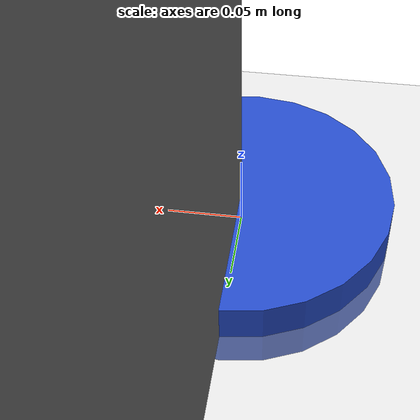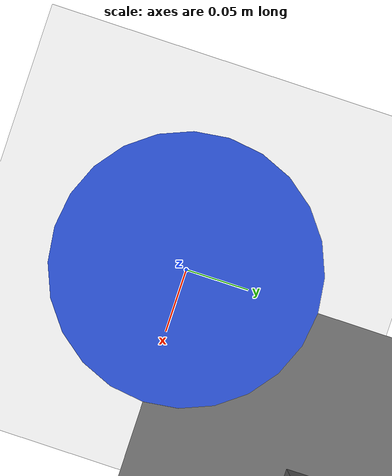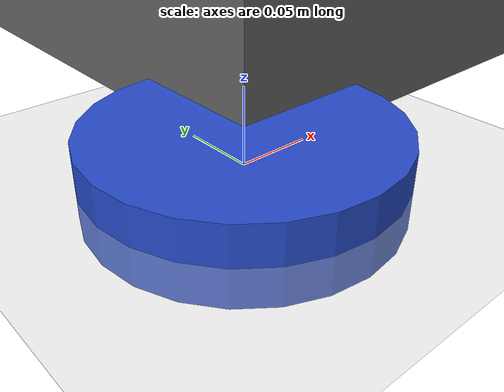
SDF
<?xml version="1.0" ?>
<sdf version="1.4">
 <world name='default'>
  <!-- Global Light Source -->
    <include>
      <uri>model://sun</uri>
    </include>

  <include>
      <uri>model://ground_plane</uri>
   </include>

   <include>
      <uri>model://room_closed_10m_10m_single_obstacle</uri>
   </include>

   <include>
      <uri>model://disk_blue</uri>
   </include>

   <include>
      <uri>model://disk_green</uri>
   </include>

    <physics type='ode'>
      <max_step_size>0.001</max_step_size> <!-- specifies the time duration in seconds of each physics update step. -->
      <real_time_factor>0</real_time_factor> <!-- product of real time update rate and max step size represents the target real time factor -->
      <real_time_update_rate>0</real_time_update_rate> <!-- specifies in Hz the number of physics updates that will be attempted per second. If this number is set to zero, it will run as fast as it can. -->
      <gravity>0 0 -9.8</gravity>
    </physics>

    <gui fullscreen='0'>
      <camera name='user_camera'>
        <pose>-7.0 0.0 40.0 0.0 1.5707963 1.5707963</pose><!-- x y z roll pitch yaw -->
        <view_controller>orbit</view_controller>
      </camera>
    </gui>

<plugin filename="libgazebo_plugin_world_step.so" name="gazebo_plugin_world_step"/>

<plugin  name="libcollision_map_creator" filename="libcollision_map_creator.so"/>

   </world>
</sdf>

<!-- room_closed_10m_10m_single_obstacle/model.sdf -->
<sdf version="1.5">
  <model name="room_closed_10m_10m_single_obstacle">
    <static>true</static>
    <pose>0 0 0 0 0 0</pose>
    <link name="walls">
      <collision name="collision">
        <geometry>
          <mesh>
            <uri>model://room_closed_10m_10m_single_obstacle/meshes/room_closed_10m_10m_single_obstacle.dae</uri>
          </mesh>
        </geometry>
      </collision>
      <visual name="visual">
        <geometry>
          <mesh>
            <uri>model:////room_closed_10m_10m_single_obstacle/meshes/room_closed_10m_10m_single_obstacle.dae</uri>
          </mesh>
        </geometry>
        <cast_shadows>false</cast_shadows>
      </visual>
    </link>
  </model>
</sdf>

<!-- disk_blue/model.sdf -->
<sdf version="1.5">
  <model name="disk_blue">
    <static>false</static>
    <link name="blue">
      <gravity>0</gravity>
      <pose>0 0 0 0 0 0</pose>
      <visual name="visual">
        <geometry>
          <cylinder>
              <radius>0.1</radius>
              <length>.05</length>
          </cylinder>
        </geometry>
        <material>
          <script>
            <uri>file://media/materials/scripts/gazebo.material</uri>
            <name>Gazebo/Blue</name>
          </script>
          <ambient>1 1 1 1</ambient>
        </material>
        <cast_shadows>0</cast_shadows>
        <transparency>0</transparency>
      </visual>
    </link>
  </model>
</sdf>

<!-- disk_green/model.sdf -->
<sdf version="1.5">
  <model name="disk_green">
    <static>false</static>
    <link name="green">
      <gravity>0</gravity>
      <pose>0 0 0 0 0 0</pose>
      <visual name="visual">
        <geometry>
          <cylinder>
              <radius>0.1</radius>
              <length>.05</length>
          </cylinder>
        </geometry>
        <material>
          <script>
            <uri>file://media/materials/scripts/gazebo.material</uri>
            <name>Gazebo/Green</name>
          </script>
          <ambient>1 1 1 1</ambient>
        </material>
        <cast_shadows>0</cast_shadows>
        <transparency>0</transparency>
      </visual>
    </link>
  </model>
</sdf>
